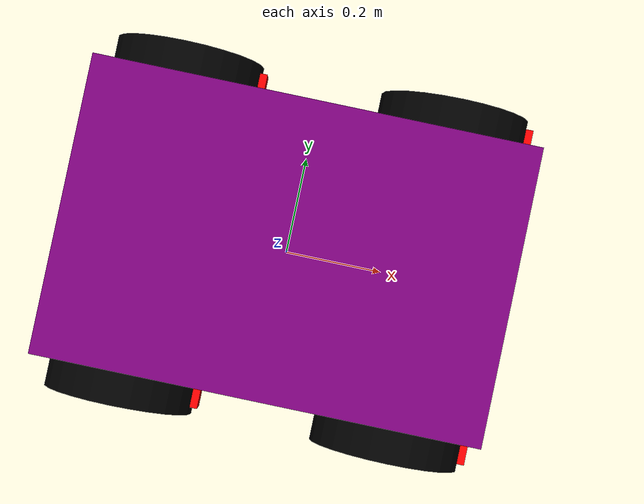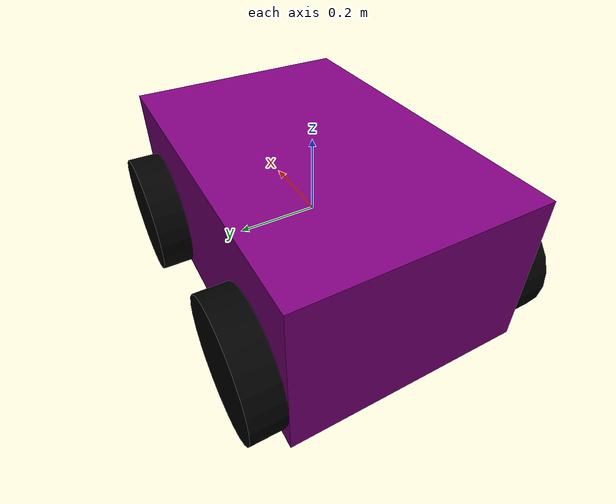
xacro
<?xml version="1.0"?>
<robot name="ackermann_robot" xmlns:xacro="http://www.ros.org/wiki/xacro">

  <!-- Namespace for gz_ros2_control controller_manager (empty = root NS, backward compatible) -->
  <xacro:arg name="gz_ros2_control_ns" default=""/>
  <!-- Gazebo model name for model-scoped topic paths (matches spawn -name) -->
  <xacro:arg name="gz_model_name" default="ackermann_robot"/>
  <!-- Topic used by gz_ros2_control to receive this model's URDF. -->
  <xacro:arg name="robot_description_topic" default="/robot_description"/>

  <!-- BX-S40 Parameters -->
  <xacro:property name="body_length" value="0.9"/>
  <xacro:property name="body_width" value="0.6"/>
  <xacro:property name="body_height" value="0.4"/>
  <xacro:property name="body_density" value="150.0"/>
  <xacro:property name="wheel_radius" value="0.16"/>
  <xacro:property name="wheel_width" value="0.08"/>
  <xacro:property name="wheel_density" value="900.0"/>
  <xacro:property name="max_steering_angle" value="0.5236"/>
  <xacro:property name="max_steering_angular_velocity" value="1.570796"/>
  <xacro:property name="max_steering_effort" value="100.0"/>
  <xacro:property name="max_velocity" value="1.4"/>
  <xacro:property name="max_effort" value="100.0"/>
  <xacro:property name="PI" value="3.14159265"/>

  <!-- Derived properties -->
  <xacro:property name="body_mass" value="${body_density * body_length * body_height * body_width}"/>
  <xacro:property name="body_inertia_x" value="${1.0/12.0 * body_mass * (body_height*body_height + body_width*body_width)}"/>
  <xacro:property name="body_inertia_y" value="${1.0/12.0 * body_mass * (body_length*body_length + body_height*body_height)}"/>
  <xacro:property name="body_inertia_z" value="${1.0/12.0 * body_mass * (body_length*body_length + body_width*body_width)}"/>
  <xacro:property name="wheel_separation" value="${body_width + wheel_width}"/>
  <xacro:property name="wheel_offset" value="${body_length/2 - wheel_radius}"/>
  <xacro:property name="wheel_mass" value="${wheel_density * PI * wheel_radius * wheel_radius * wheel_width}"/>
  <xacro:property name="wheel_inertia_x" value="${1.0/12.0 * wheel_mass * (3*wheel_radius*wheel_radius + wheel_width*wheel_width)}"/>
  <xacro:property name="wheel_inertia_y" value="${1.0/12.0 * wheel_mass * (3*wheel_radius*wheel_radius + wheel_width*wheel_width)}"/>
  <xacro:property name="wheel_inertia_z" value="${1.0/2.0 * wheel_mass * wheel_radius * wheel_radius}"/>
  <xacro:property name="max_wheel_angular_velocity" value="${max_velocity / wheel_radius}"/>

  <!-- ========== Links ========== -->

  <!-- Body Link -->
  <link name="body_link">
    <visual>
      <origin xyz="0 0 0" rpy="0 0 0"/>
      <geometry>
        <box size="${body_length} ${body_width} ${body_height}"/>
      </geometry>
      <material name="body_material">
        <color rgba="0.5 0.0 0.5 1.0"/>
      </material>
    </visual>
    <collision>
      <origin xyz="0 0 0" rpy="0 0 0"/>
      <geometry>
        <box size="${body_length} ${body_width} ${body_height}"/>
      </geometry>
    </collision>
    <inertial>
      <mass value="${body_mass}"/>
      <inertia ixx="${body_inertia_x}" ixy="0.0" ixz="0.0" iyy="${body_inertia_y}" iyz="0.0" izz="${body_inertia_z}"/>
      <origin xyz="0 0 0" rpy="0 0 0"/>
    </inertial>
  </link>

  <!-- Front Left Steering Link -->
  <link name="front_left_steering_link">
    <visual>
      <origin xyz="0 0 0" rpy="1.570795 0 0"/>
      <geometry>
        <cylinder length="0.001" radius="0.01"/>
      </geometry>
      <material name="steering_material">
        <color rgba="0.5 0.5 0.5 1.0"/>
      </material>
    </visual>
    <collision>
      <origin xyz="0 0 0" rpy="1.570795 0 0"/>
      <geometry>
        <cylinder length="0.001" radius="0.01"/>
      </geometry>
    </collision>
    <inertial>
      <mass value="0.01"/>
      <inertia ixx="1e-6" ixy="0.0" ixz="0.0" iyy="1e-6" iyz="0.0" izz="1e-6"/>
      <origin xyz="0 0 0" rpy="0 0 0"/>
    </inertial>
  </link>

  <!-- Front Left Wheel Link -->
  <link name="front_left_wheel_link">
    <visual>
      <origin xyz="0 0 0" rpy="1.570795 0 0"/>
      <geometry>
        <cylinder radius="${wheel_radius}" length="${wheel_width}"/>
      </geometry>
      <material name="wheel_material">
        <color rgba="0.0 0.0 0.0 1.0"/>
      </material>
    </visual>
    <!-- Rotation marker stripe (visual only) -->
    <visual>
      <origin xyz="${wheel_radius} 0 0" rpy="0 1.570795 0"/>
      <geometry>
        <box size="${wheel_width * 0.8} ${wheel_radius * 0.3} ${wheel_radius * 0.15}"/>
      </geometry>
      <material name="stripe_material_fl">
        <color rgba="1.0 0.0 0.0 1.0"/>
      </material>
    </visual>
    <collision>
      <origin xyz="0 0 0" rpy="1.570795 0 0"/>
      <geometry>
        <cylinder radius="${wheel_radius}" length="${wheel_width}"/>
      </geometry>
    </collision>
    <inertial>
      <mass value="${wheel_mass}"/>
      <inertia ixx="${wheel_inertia_x}" ixy="0.0" ixz="0.0" iyy="${wheel_inertia_y}" iyz="0.0" izz="${wheel_inertia_z}"/>
      <origin xyz="0 0 0" rpy="0 0 0"/>
    </inertial>
  </link>

  <!-- Front Right Steering Link -->
  <link name="front_right_steering_link">
    <visual>
      <origin xyz="0 0 0" rpy="1.570795 0 0"/>
      <geometry>
        <cylinder length="0.001" radius="0.01"/>
      </geometry>
      <material name="steering_material">
        <color rgba="0.5 0.5 0.5 1.0"/>
      </material>
    </visual>
    <collision>
      <origin xyz="0 0 0" rpy="1.570795 0 0"/>
      <geometry>
        <cylinder length="0.001" radius="0.01"/>
      </geometry>
    </collision>
    <inertial>
      <mass value="0.01"/>
      <inertia ixx="1e-6" ixy="0.0" ixz="0.0" iyy="1e-6" iyz="0.0" izz="1e-6"/>
      <origin xyz="0 0 0" rpy="0 0 0"/>
    </inertial>
  </link>

  <!-- Front Right Wheel Link -->
  <link name="front_right_wheel_link">
    <visual>
      <origin xyz="0 0 0" rpy="1.570795 0 0"/>
      <geometry>
        <cylinder radius="${wheel_radius}" length="${wheel_width}"/>
      </geometry>
      <material name="wheel_material">
        <color rgba="0.0 0.0 0.0 1.0"/>
      </material>
    </visual>
    <!-- Rotation marker stripe (visual only) -->
    <visual>
      <origin xyz="${wheel_radius} 0 0" rpy="0 1.570795 0"/>
      <geometry>
        <box size="${wheel_width * 0.8} ${wheel_radius * 0.3} ${wheel_radius * 0.15}"/>
      </geometry>
      <material name="stripe_material_fr">
        <color rgba="1.0 0.0 0.0 1.0"/>
      </material>
    </visual>
    <collision>
      <origin xyz="0 0 0" rpy="1.570795 0 0"/>
      <geometry>
        <cylinder radius="${wheel_radius}" length="${wheel_width}"/>
      </geometry>
    </collision>
    <inertial>
      <mass value="${wheel_mass}"/>
      <inertia ixx="${wheel_inertia_x}" ixy="0.0" ixz="0.0" iyy="${wheel_inertia_y}" iyz="0.0" izz="${wheel_inertia_z}"/>
      <origin xyz="0 0 0" rpy="0 0 0"/>
    </inertial>
  </link>

  <!-- Rear Left Wheel Link -->
  <link name="rear_left_wheel_link">
    <visual>
      <origin xyz="0 0 0" rpy="1.570795 0 0"/>
      <geometry>
        <cylinder radius="${wheel_radius}" length="${wheel_width}"/>
      </geometry>
      <material name="wheel_material">
        <color rgba="0.0 0.0 0.0 1.0"/>
      </material>
    </visual>
    <!-- Rotation marker stripe (visual only) -->
    <visual>
      <origin xyz="${wheel_radius} 0 0" rpy="0 1.570795 0"/>
      <geometry>
        <box size="${wheel_width * 0.8} ${wheel_radius * 0.3} ${wheel_radius * 0.15}"/>
      </geometry>
      <material name="stripe_material_rl">
        <color rgba="1.0 0.0 0.0 1.0"/>
      </material>
    </visual>
    <collision>
      <origin xyz="0 0 0" rpy="1.570795 0 0"/>
      <geometry>
        <cylinder radius="${wheel_radius}" length="${wheel_width}"/>
      </geometry>
    </collision>
    <inertial>
      <mass value="${wheel_mass}"/>
      <inertia ixx="${wheel_inertia_x}" ixy="0.0" ixz="0.0" iyy="${wheel_inertia_y}" iyz="0.0" izz="${wheel_inertia_z}"/>
      <origin xyz="0 0 0" rpy="0 0 0"/>
    </inertial>
  </link>

  <!-- Rear Right Wheel Link -->
  <link name="rear_right_wheel_link">
    <visual>
      <origin xyz="0 0 0" rpy="1.570795 0 0"/>
      <geometry>
        <cylinder radius="${wheel_radius}" length="${wheel_width}"/>
      </geometry>
      <material name="wheel_material">
        <color rgba="0.0 0.0 0.0 1.0"/>
      </material>
    </visual>
    <!-- Rotation marker stripe (visual only) -->
    <visual>
      <origin xyz="${wheel_radius} 0 0" rpy="0 1.570795 0"/>
      <geometry>
        <box size="${wheel_width * 0.8} ${wheel_radius * 0.3} ${wheel_radius * 0.15}"/>
      </geometry>
      <material name="stripe_material_rr">
        <color rgba="1.0 0.0 0.0 1.0"/>
      </material>
    </visual>
    <collision>
      <origin xyz="0 0 0" rpy="1.570795 0 0"/>
      <geometry>
        <cylinder radius="${wheel_radius}" length="${wheel_width}"/>
      </geometry>
    </collision>
    <inertial>
      <mass value="${wheel_mass}"/>
      <inertia ixx="${wheel_inertia_x}" ixy="0.0" ixz="0.0" iyy="${wheel_inertia_y}" iyz="0.0" izz="${wheel_inertia_z}"/>
      <origin xyz="0 0 0" rpy="0 0 0"/>
    </inertial>
  </link>

  <!-- ========== Joints ========== -->

  <!-- Front Left Steering Joint (position controlled, Z-axis) -->
  <joint name="front_left_steering_joint" type="revolute">
    <origin xyz="${wheel_offset} ${wheel_separation/2} -${wheel_radius/2}" rpy="0 0 0"/>
    <parent link="body_link"/>
    <child link="front_left_steering_link"/>
    <axis xyz="0 0 1"/>
    <limit effort="${max_steering_effort}" lower="${-max_steering_angle}" upper="${max_steering_angle}" velocity="${max_steering_angular_velocity}"/>
    <dynamics damping="0.01" friction="0.01"/>
  </joint>

  <!-- Front Left Wheel Joint (passive, Y-axis) -->
  <joint name="front_left_wheel_joint" type="continuous">
    <origin xyz="0 0 0" rpy="0 0 0"/>
    <parent link="front_left_steering_link"/>
    <child link="front_left_wheel_link"/>
    <axis xyz="0 1 0"/>
    <limit effort="${max_effort}" velocity="${max_wheel_angular_velocity}"/>
    <dynamics damping="0.01" friction="0.01"/>
  </joint>

  <!-- Front Right Steering Joint (position controlled, Z-axis) -->
  <joint name="front_right_steering_joint" type="revolute">
    <origin xyz="${wheel_offset} ${-wheel_separation/2} -${wheel_radius/2}" rpy="0 0 0"/>
    <parent link="body_link"/>
    <child link="front_right_steering_link"/>
    <axis xyz="0 0 1"/>
    <limit effort="${max_steering_effort}" lower="${-max_steering_angle}" upper="${max_steering_angle}" velocity="${max_steering_angular_velocity}"/>
    <dynamics damping="0.01" friction="0.01"/>
  </joint>

  <!-- Front Right Wheel Joint (passive, Y-axis) -->
  <joint name="front_right_wheel_joint" type="continuous">
    <origin xyz="0 0 0" rpy="0 0 0"/>
    <parent link="front_right_steering_link"/>
    <child link="front_right_wheel_link"/>
    <axis xyz="0 1 0"/>
    <limit effort="${max_effort}" velocity="${max_wheel_angular_velocity}"/>
    <dynamics damping="0.01" friction="0.01"/>
  </joint>

  <!-- Rear Left Wheel Joint (velocity controlled, Y-axis) -->
  <joint name="rear_left_wheel_joint" type="continuous">
    <origin xyz="-${wheel_offset} ${wheel_separation/2} -${wheel_radius/2}" rpy="0 0 0"/>
    <parent link="body_link"/>
    <child link="rear_left_wheel_link"/>
    <axis xyz="0 1 0"/>
    <limit effort="${max_effort}" velocity="${max_wheel_angular_velocity}"/>
    <dynamics damping="0.01" friction="0.01"/>
  </joint>

  <!-- Rear Right Wheel Joint (velocity controlled, Y-axis) -->
  <joint name="rear_right_wheel_joint" type="continuous">
    <origin xyz="-${wheel_offset} ${-wheel_separation/2} -${wheel_radius/2}" rpy="0 0 0"/>
    <parent link="body_link"/>
    <child link="rear_right_wheel_link"/>
    <axis xyz="0 1 0"/>
    <limit effort="${max_effort}" velocity="${max_wheel_angular_velocity}"/>
    <dynamics damping="0.01" friction="0.01"/>
  </joint>

  <!-- ========== Gazebo Surface Friction ========== -->
  <gazebo reference="body_link">
    <material>
      <ambient>0.5 0.0 0.5 1.0</ambient>
      <diffuse>0.5 0.0 0.5 1.0</diffuse>
      <specular>0.6 0.1 0.6 1.0</specular>
    </material>
    <mu1>0.0001</mu1>
    <mu2>0.0001</mu2>
  </gazebo>
  <gazebo reference="front_left_wheel_link">
    <mu1>1.0</mu1>
    <mu2>1.0</mu2>
  </gazebo>
  <gazebo reference="front_right_wheel_link">
    <mu1>1.0</mu1>
    <mu2>1.0</mu2>
  </gazebo>
  <gazebo reference="rear_left_wheel_link">
    <mu1>1.0</mu1>
    <mu2>1.0</mu2>
  </gazebo>
  <gazebo reference="rear_right_wheel_link">
    <mu1>1.0</mu1>
    <mu2>1.0</mu2>
  </gazebo>

  <!-- ========== ros2_control ========== -->
  <ros2_control name="control" type="system">
    <hardware>
      <plugin>gz_ros2_control/GazeboSimSystem</plugin>
    </hardware>

    <joint name="front_left_steering_joint">
      <command_interface name="position">
        <param name="min">${-max_steering_angle}</param>
        <param name="max">${max_steering_angle}</param>
      </command_interface>
      <state_interface name="position"/>
      <state_interface name="velocity"/>
      <state_interface name="effort"/>
    </joint>

    <joint name="front_right_steering_joint">
      <command_interface name="position">
        <param name="min">${-max_steering_angle}</param>
        <param name="max">${max_steering_angle}</param>
      </command_interface>
      <state_interface name="position"/>
      <state_interface name="velocity"/>
      <state_interface name="effort"/>
    </joint>

    <joint name="rear_left_wheel_joint">
      <command_interface name="velocity">
        <param name="min">${-max_wheel_angular_velocity}</param>
        <param name="max">${max_wheel_angular_velocity}</param>
      </command_interface>
      <state_interface name="position"/>
      <state_interface name="velocity"/>
      <state_interface name="effort"/>
    </joint>

    <joint name="rear_right_wheel_joint">
      <command_interface name="velocity">
        <param name="min">${-max_wheel_angular_velocity}</param>
        <param name="max">${max_wheel_angular_velocity}</param>
      </command_interface>
      <state_interface name="position"/>
      <state_interface name="velocity"/>
      <state_interface name="effort"/>
    </joint>
  </ros2_control>

  <!-- ========== Gazebo Plugins ========== -->
  <gazebo>
    <plugin filename="gz-sim-joint-state-publisher-system" name="gz::sim::systems::JointStatePublisher">
      <topic>joint_states</topic>
      <joint_name>front_left_steering_joint</joint_name>
      <joint_name>front_right_steering_joint</joint_name>
      <joint_name>front_left_wheel_joint</joint_name>
      <joint_name>front_right_wheel_joint</joint_name>
      <joint_name>rear_left_wheel_joint</joint_name>
      <joint_name>rear_right_wheel_joint</joint_name>
    </plugin>

    <plugin filename="gz_ros2_control-system" name="gz_ros2_control::GazeboSimROS2ControlPlugin">
      <parameters>$(find ackermann_control)/config/gz_ros2_control.yaml</parameters>
      <ros>
        <namespace>$(arg gz_ros2_control_ns)</namespace>
        <remapping>robot_description:=$(arg robot_description_topic)</remapping>
      </ros>
    </plugin>

    <plugin filename="gz-sim-imu-system" name="gz::sim::systems::Imu">
    </plugin>

    <plugin filename="gz-sim-odometry-publisher-system" name="gz::sim::systems::OdometryPublisher">
      <odom_frame>odom</odom_frame>
      <robot_base_frame>body_link</robot_base_frame>
      <odom_topic>/model/$(arg gz_model_name)/odom</odom_topic>
      <dimensions>3</dimensions>
      <publish_tf>false</publish_tf>
    </plugin>
  </gazebo>

  <!-- ========== Sensors ========== -->

  <!-- 2D LiDAR on body_link -->
  <gazebo reference="body_link">
    <sensor name="lidar" type="gpu_lidar">
      <pose>0 0 0.22 0 0 0</pose>
      <topic>/model/$(arg gz_model_name)/scan_raw</topic>
      <update_rate>10</update_rate>
      <lidar>
        <scan>
          <horizontal>
            <samples>720</samples>
            <resolution>1</resolution>
            <min_angle>0.0</min_angle>
            <max_angle>6.28318</max_angle>
          </horizontal>
        </scan>
        <range>
          <min>0.15</min>
          <max>16.0</max>
        </range>
      </lidar>
      <visualize>true</visualize>
    </sensor>

    <!-- IMU on body_link -->
    <sensor name="imu_sensor" type="imu">
      <always_on>1</always_on>
      <update_rate>100</update_rate>
      <visualize>true</visualize>
      <topic>/model/$(arg gz_model_name)/imu</topic>
      <imu>
        <angular_velocity>
          <x><noise type="gaussian"><mean>0.0</mean><stddev>0.00017</stddev></noise></x>
          <y><noise type="gaussian"><mean>0.0</mean><stddev>0.00017</stddev></noise></y>
          <z><noise type="gaussian"><mean>0.0</mean><stddev>0.00017</stddev></noise></z>
        </angular_velocity>
        <linear_acceleration>
          <x><noise type="gaussian"><mean>0.0</mean><stddev>0.001</stddev></noise></x>
          <y><noise type="gaussian"><mean>0.0</mean><stddev>0.001</stddev></noise></y>
          <z><noise type="gaussian"><mean>0.0</mean><stddev>0.001</stddev></noise></z>
        </linear_acceleration>
      </imu>
    </sensor>
  </gazebo>

</robot>
